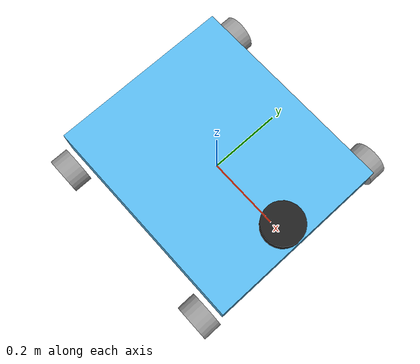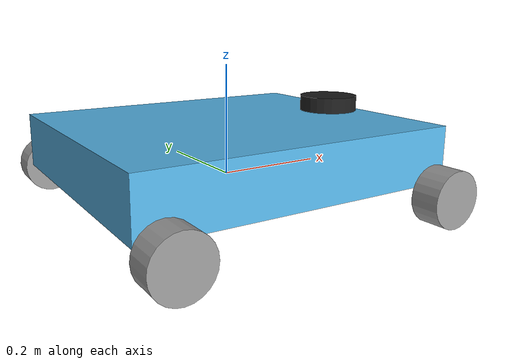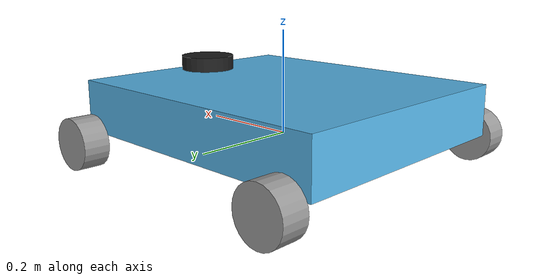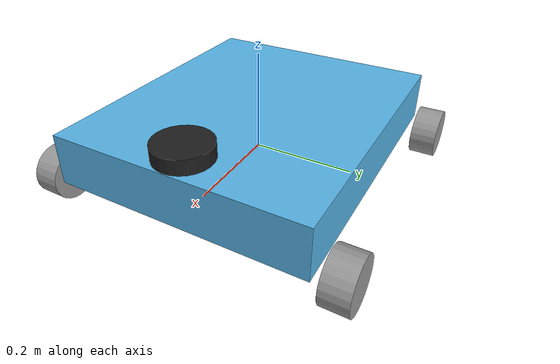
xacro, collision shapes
<!-- Only ascii are acceptable because of the xacro interpreter-->
<robot name="origins"
  xmlns:xacro="http://ros.org/wiki/xacro">
  <xacro:property name="PI" value="3.14159265358979" />
  <xacro:property name="length" value="0.582"/>
  <xacro:property name="width" value="0.496"/>
  <xacro:property name="height" value="0.10"/>
  <xacro:property name="wheel_radius" value="0.050" />
  <xacro:property name="wheel_width" value="0.0505" />

  <!-- @lr: left or right -->
  <!-- @fr: front or rear -->
  <xacro:macro name="wheel" params="lr fr xy">
    <link name="${lr}_${fr}_wheel">
      <visual>
        <geometry>
          <mesh filename="package://bot_simulation/stl/mecanum_wheel_${lr}_${fr}.stl" scale="0.001 0.001 0.001"/>
        </geometry>
      </visual>
      <collision>
        <origin xyz="0 0 0" rpy="${PI/2} 0 0"/>
        <geometry>
          <cylinder radius="${wheel_radius}" length="${wheel_width}"/>
        </geometry>
      </collision>
    </link>
    <joint name="${lr}_${fr}_wheel_to_base_link" type="fixed">
      <parent link="base_link"/>
      <child link="${lr}_${fr}_wheel"/>
      <origin xyz="${xy} -0.06"/>
    </joint>

    <gazebo reference="${lr}_${fr}_wheel">
      <material>Gazebo/Grey</material>
      <mu1>0.0</mu1>
      <mu2>0.0</mu2>
    </gazebo>

  </xacro:macro>

  <link name="base_footprint"></link>

  <joint name="base_link_joint" type="fixed">
    <origin xyz="0 0 0.05" rpy="0 0 0" />
    <parent link="base_footprint"/>
    <child link="base_link" />
  </joint>

  <link name="base_link">
    <visual>
      <geometry>
        <box size="${length} ${width} ${height}"/>
      </geometry>
    </visual>
    <collision>
      <geometry>
        <box size="${length} ${width} ${height}"/>
      </geometry>
    </collision>
    <inertial>
      <origin xyz="-0.01103 0 0.002" rpy="0 0 0"/>
      <mass value="2.844"/>
      <inertia ixx="0.018819942" ixy="0" ixz="-0.000101519" iyy="0.057333716" iyz="0" izz="0.074201740"/>
    </inertial>
  </link>

  <xacro:wheel lr="left" fr="front" xy="${(length/2 - 0.04)} ${width/2 + 0.04}"/>
  <xacro:wheel lr="left" fr="rear" xy="${-(length/2 - 0.04)} ${width/2 + 0.04}"/>
  <xacro:wheel lr="right" fr="front" xy="${(length/2 - 0.04)} ${-(width/2 + 0.04)}"/>
  <xacro:wheel lr="right" fr="rear" xy="${-(length/2 - 0.04)} ${-(width/2 + 0.04)}"/>

  <link name="laser">
    <visual>
      <origin xyz="0 0 0" rpy="0 0 0"/>
      <geometry>
        <mesh filename="package://bot_simulation/stl/laser.stl" scale="0.001 0.001 0.001"/>
      </geometry>
      <material name="dark"/>
    </visual>

    <collision>
      <origin xyz="0.015 0 -0.0065" rpy="0 0 0"/>
      <geometry>
        <cylinder length="0.0315" radius="0.055"/>
      </geometry>
    </collision>

    <inertial>
      <mass value="0.114" />
      <origin xyz="0 0 0" />
      <inertia ixx="0.001" ixy="0.0" ixz="0.0" iyy="0.001" iyz="0.0" izz="0.001" />
    </inertial>
  </link>

  <joint name="base_to_laser" type="fixed">
    <parent link="base_link"/>
    <child link="laser"/>
    <origin xyz="${width/2} 0 ${height/2 + 0.02}" rpy="0 0 -2.67"/>
  </joint>

  <gazebo reference="laser">
    <material>Gazebo/FlatBlack</material>
    <sensor type="ray" name="lds_lfcd_sensor">
      <pose>0 0 0 0 0 0</pose>
      <visualize>false</visualize>
      <update_rate>20</update_rate>
      <ray>
        <scan>
          <horizontal>
            <samples>360</samples>
            <resolution>2</resolution>
            <min_angle>0.0</min_angle>
            <max_angle>6.28319</max_angle>
          </horizontal>
        </scan>
        <range>
          <min>0.150</min>
          <max>10</max>
          <resolution>0.015</resolution>
        </range>
        <noise>
          <type>gaussian</type>
          <mean>0.0</mean>
          <stddev>0.01</stddev>
        </noise>
      </ray>
      <plugin name="gazebo_ros_lds_lfcd_controller" filename="libgazebo_ros_laser.so">
        <topicName>scan</topicName>
        <frameName>laser</frameName>
      </plugin>
    </sensor>
  </gazebo>

  <gazebo>
    <plugin name="object_controller" filename="libros_force_move.so">
      <cmdVelTopic>cmd_vel</cmdVelTopic>
      <odometryTopic>odom</odometryTopic>
      <odometryFrameId>odom</odometryFrameId>
      <odometryRate>10.0</odometryRate>
      <baseLinkName>base_footprint</baseLinkName>
    </plugin>
  </gazebo>

</robot>
